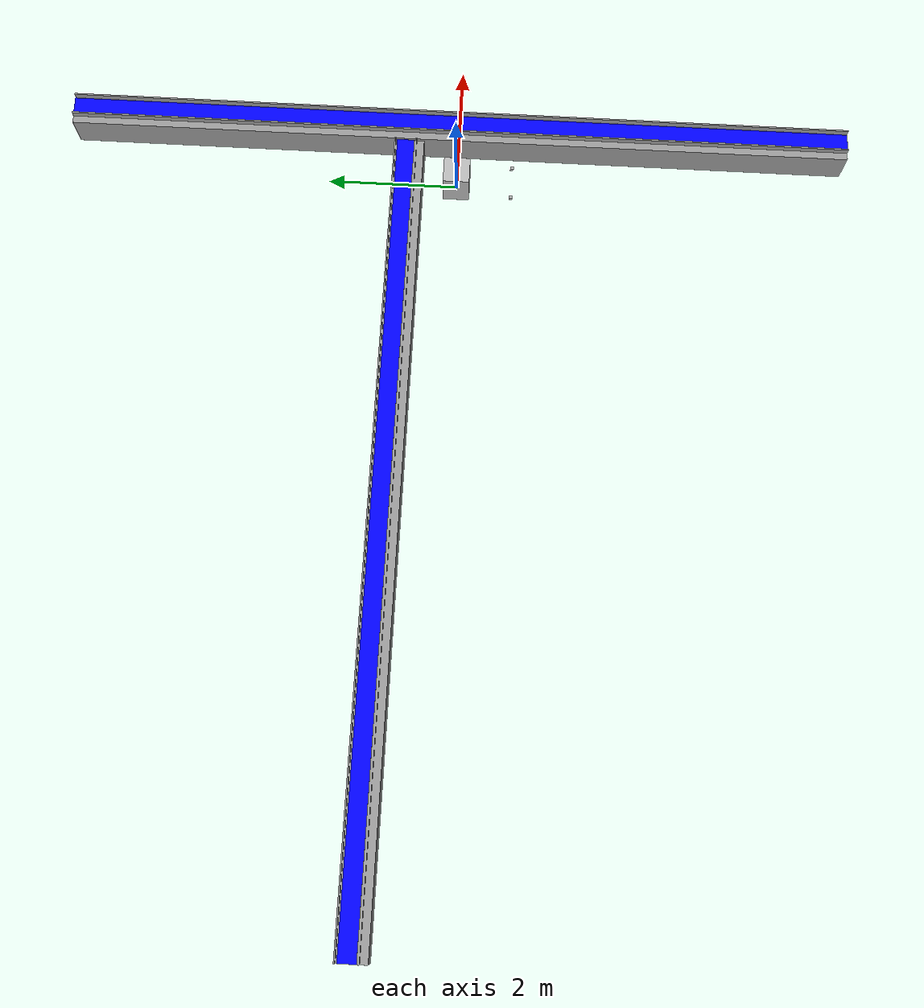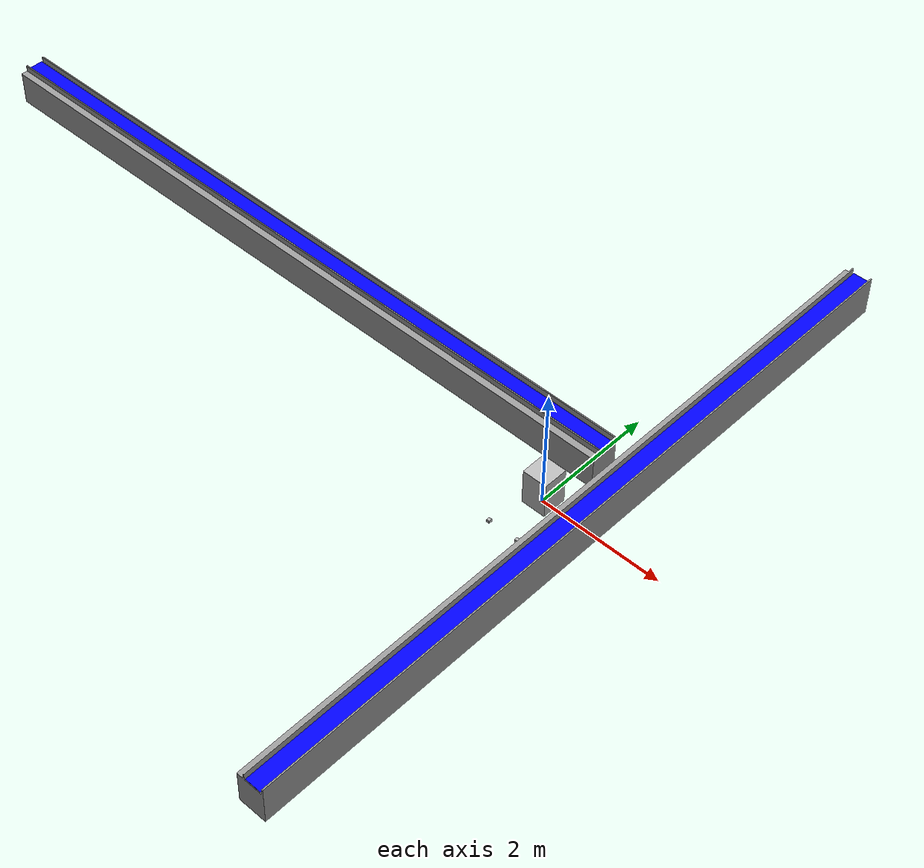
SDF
<?xml version="1.0" ?>
<sdf version="1.8">
  <world name="test_world">

    <!-- Physics Tag -->
    <physics name="4ms" type="ignored">
      <max_step_size>0.004</max_step_size>
      <real_time_factor>1.0</real_time_factor>
    </physics>
    <!-- Load Physics plugin -->
    <plugin
      filename="gz-sim-physics-system"
      name="gz::sim::systems::Physics">
    </plugin>
    <plugin
      filename="gz-sim-user-commands-system"
      name="gz::sim::systems::UserCommands">
    </plugin>
    <plugin
      filename="gz-sim-scene-broadcaster-system"
      name="gz::sim::systems::SceneBroadcaster">
    </plugin>

    <plugin
      filename="gz-sim-sensors-system"
      name="gz::sim::systems::Sensors">
      <render_engine>ogre2</render_engine>
    </plugin>
    <light type="directional" name="sun">
      <cast_shadows>true</cast_shadows>
      <pose>0 0 10 0 0 0</pose>
      <diffuse>0.8 0.8 0.8 1</diffuse>
      <specular>0.2 0.2 0.2 1</specular>
      <attenuation>
          <range>1000</range>
          <constant>0.9</constant>
          <linear>0.01</linear>
          <quadratic>0.001</quadratic>
      </attenuation>
      <direction>-0.5 0.1 -0.9</direction>
    </light>

    <!-- Include Conveyor Belt with Keyboard controls -->
    <include>
      <name>conveyor_belt</name>
      <uri>model://conveyor_belt</uri>
      <pose>0.8 0 0.55 0 0 3.14159</pose>
      <!-- Moving Forward: W -->
      <plugin filename="gz-sim-triggered-publisher-system"
            name="gz::sim::systems::TriggeredPublisher">
        <input type="gz.msgs.Int32" topic="/keyboard/keypress">
          <match field="data">87</match>
        </input>
        <output type="gz.msgs.Double" topic="/model/conveyor_belt/link/belt_link/track_cmd_vel">
          data: 0.36
        </output>
      </plugin>
      <!-- Moving Backward: X -->
      <plugin filename="gz-sim-triggered-publisher-system"
            name="gz::sim::systems::TriggeredPublisher">
        <input type="gz.msgs.Int32" topic="/keyboard/keypress">
          <match field="data">88</match>
        </input>
        <output type="gz.msgs.Double" topic="/model/conveyor_belt/link/belt_link/track_cmd_vel">
          data: -0.36
        </output>
      </plugin>
      <!-- Stop: S -->
      <plugin filename="gz-sim-triggered-publisher-system"
            name="gz::sim::systems::TriggeredPublisher">
        <input type="gz.msgs.Int32" topic="/keyboard/keypress">
          <match field="data">83</match>
        </input>
        <output type="gz.msgs.Double" topic="/model/conveyor_belt/link/belt_link/track_cmd_vel">
          data: 0.0
        </output>
      </plugin>
    </include>

    <!-- Import sensor -->
    <include>
      <name>box_detector</name>
      <uri>model://ir_sensor</uri>
      <pose relative_to="conveyor_belt">-0.2 -0.85 0.15 0 0 0</pose>
    </include>

    <!-- Import boxes -->

    <include>
      <name>incoming_conveyor</name>
      <uri>model://conveyor_belt</uri>
      <pose>-5.6 0.8 0.7 0 0 -1.57079</pose>
      <!-- Moving Forward: W -->
      <plugin filename="gz-sim-triggered-publisher-system"
            name="gz::sim::systems::TriggeredPublisher">
        <input type="gz.msgs.Int32" topic="/keyboard/keypress">
          <match field="data">87</match>
        </input>
        <output type="gz.msgs.Double" topic="/model/incoming_conveyor/link/belt_link/track_cmd_vel">
          data: 0.36
        </output>
      </plugin>
      <!-- Moving Backward: X -->
      <plugin filename="gz-sim-triggered-publisher-system"
            name="gz::sim::systems::TriggeredPublisher">
        <input type="gz.msgs.Int32" topic="/keyboard/keypress">
          <match field="data">88</match>
        </input>
        <output type="gz.msgs.Double" topic="/model/incoming_conveyor/link/belt_link/track_cmd_vel">
          data: -0.36
        </output>
      </plugin>
      <!-- Stop: S -->
      <plugin filename="gz-sim-triggered-publisher-system"
            name="gz::sim::systems::TriggeredPublisher">
        <input type="gz.msgs.Int32" topic="/keyboard/keypress">
          <match field="data">83</match>
        </input>
        <output type="gz.msgs.Double" topic="/model/incoming_conveyor/link/belt_link/track_cmd_vel">
          data: 0.0
        </output>
      </plugin>
    </include>

    <model name="robot_base">
      <static>1</static>
      <pose>0 0 0.3 0 0 0</pose>
      <link name="base">
        <visual name="base_visual">
          <geometry>
           <box>
            <size>0.4 0.4 0.6</size>
           </box>
          </geometry>
        </visual>
        <collision name="base_collision">
          <geometry>
           <box>
            <size>0.4 0.4 0.6</size>
           </box>
          </geometry>
        </collision>
      </link>
    </model>

  </world>
</sdf>

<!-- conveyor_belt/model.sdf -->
<sdf version='1.7'>
  <model name='conveyor_belt'>
    <static>1</static>
    <link name='base_link'>
      <pose relative_to="__model__">0 6 0 0 0 0</pose>
      <inertial>
        <mass>6.06</mass>
        <inertia>
            <ixx>0.002731</ixx>
            <ixy>0</ixy>
            <ixz>0</ixz>
            <iyy>0.032554</iyy>
            <iyz>1.5e-05</iyz>
            <izz>0.031391</izz>
        </inertia>
      </inertial>
      <visual name="base_visual">
        <geometry>
          <mesh>
            <scale>0.001 0.01 0.001</scale>
            <uri>model://conveyor_belt/meshes/conveyor_belt.dae</uri>
          </mesh>
        </geometry>
        <material>
          <ambient>0.6 0.6 0.6 1</ambient>
          <diffuse>0.6 0.6 0.6 1</diffuse>
          <specular>0.8 0.8 0.8 1</specular>
        </material>
      </visual>
      <collision name="base_collision">
        <geometry>
          <mesh>
            <scale>0.001 0.01 0.001</scale>
            <uri>model://conveyor_belt/meshes/conveyor_belt.dae</uri>
          </mesh>
        </geometry>
        <surface>
          <friction>
            <ode>
              <mu>0</mu>
              <mu2>0</mu2>
              <fdir1>0 0 0</fdir1>
            </ode>
          </friction>
        </surface>
      </collision>
    </link>
    <link name="belt_link">
      <gravity>1</gravity>
      <kinematic>0</kinematic>
      <pose relative_to="__model__">0 0 0.02 0 0 1.570796326794896619 </pose>
      <visual name="belt_visual">
        <geometry>
          <box>
            <size>12 0.26 0.0075</size>
          </box>
        </geometry>
        <material>
          <ambient>0 0.0 1.0 1</ambient>
          <diffuse>0 0.0 1.0 1</diffuse>
          <specular>0.8 0.8 0.8 1</specular>
        </material>
      </visual>
      <collision name="belt_collision">
        <geometry>
          <box>
            <size>12 0.26 0.0075</size>
          </box>
        </geometry>
        <surface>
          <friction>
            <ode>
              <mu>0.7</mu>
              <mu2>150</mu2>
              <fdir1>0 1 0</fdir1>
            </ode>
          </friction>
        </surface>
      </collision>
    </link>

    <plugin filename="gz-sim-track-controller-system"
            name="gz::sim::systems::TrackController">
      <link>belt_link</link>
      <odometry_publish_frequency>30</odometry_publish_frequency>
    </plugin>
  </model>
</sdf>

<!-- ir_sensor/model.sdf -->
<sdf version='1.8'>
  <model name="ir_sensor">
    <static>true</static>
    <link name="sensor_link">
      <visual name="visual">
        <geometry>
          <box>
            <size>0.05 0.05 0.05</size>
          </box>
        </geometry>
      </visual>
      <sensor type="gpu_lidar" name="lidar_sensor">
        <pose>0 0 0 0 0 0</pose>
        <visualize>true</visualize>
        <update_rate>10</update_rate>
        <always_on>true</always_on>
        <topic>ir_sensor</topic>
        <ray>
          <scan>
            <horizontal>
              <samples>1</samples>
              <resolution>1</resolution>
            </horizontal>
          </scan>
          <range>
            <min>0.01</min>
            <max>0.6</max>
            <resolution>0.01</resolution>
          </range>
        </ray>
      </sensor>
    </link>
    <link name="reflector_link">
      <pose relative_to="sensor_link">0.5 0 0 0 0 0</pose>
      <visual name="visual">
        <geometry>
          <box>
            <size>0.05 0.05 0.05</size>
          </box>
        </geometry>
      </visual>
      <collision name="collision">
        <geometry>
          <box>
            <size>0.05 0.05 0.05</size>
          </box>
        </geometry>
      </collision>
    </link>
  </model>
</sdf>
